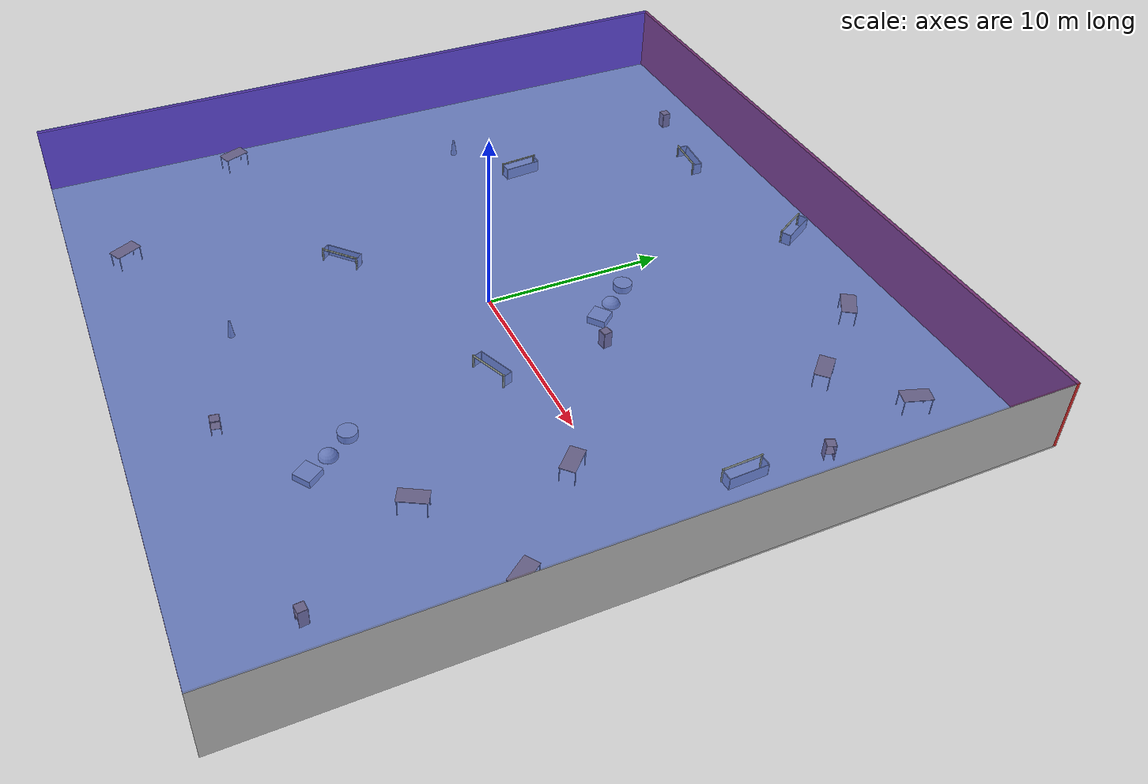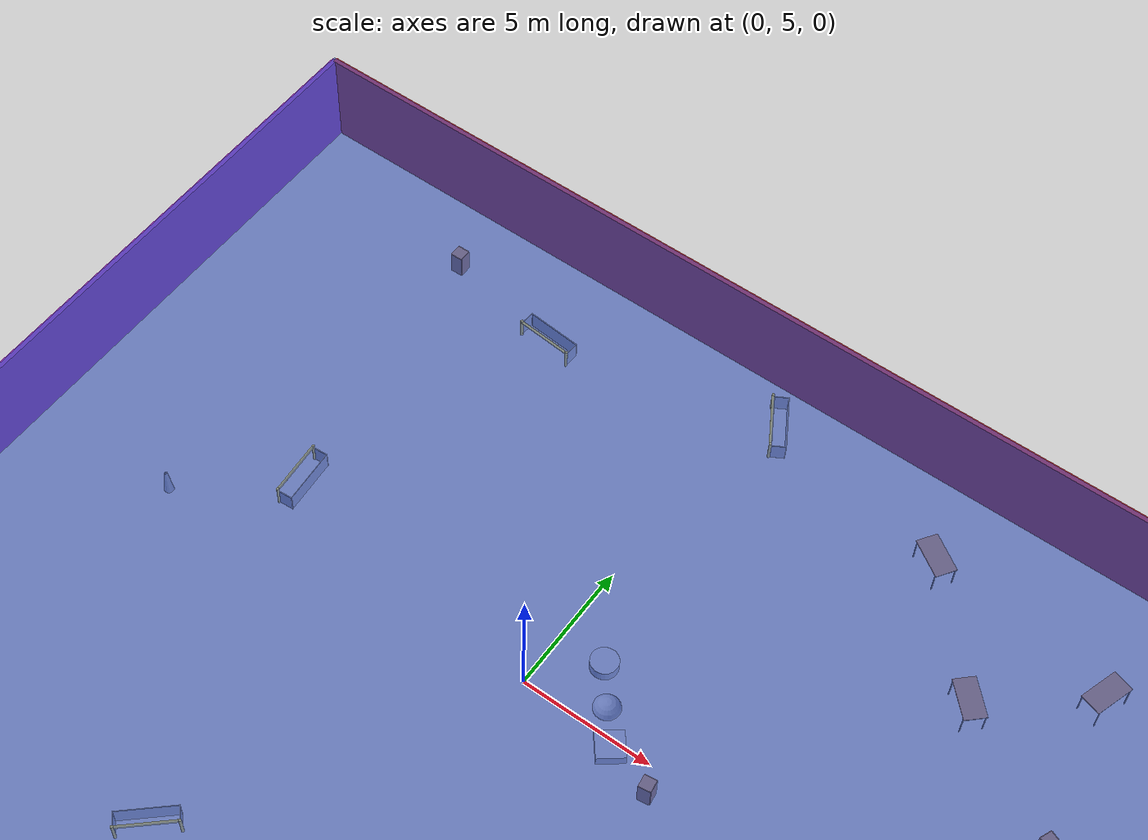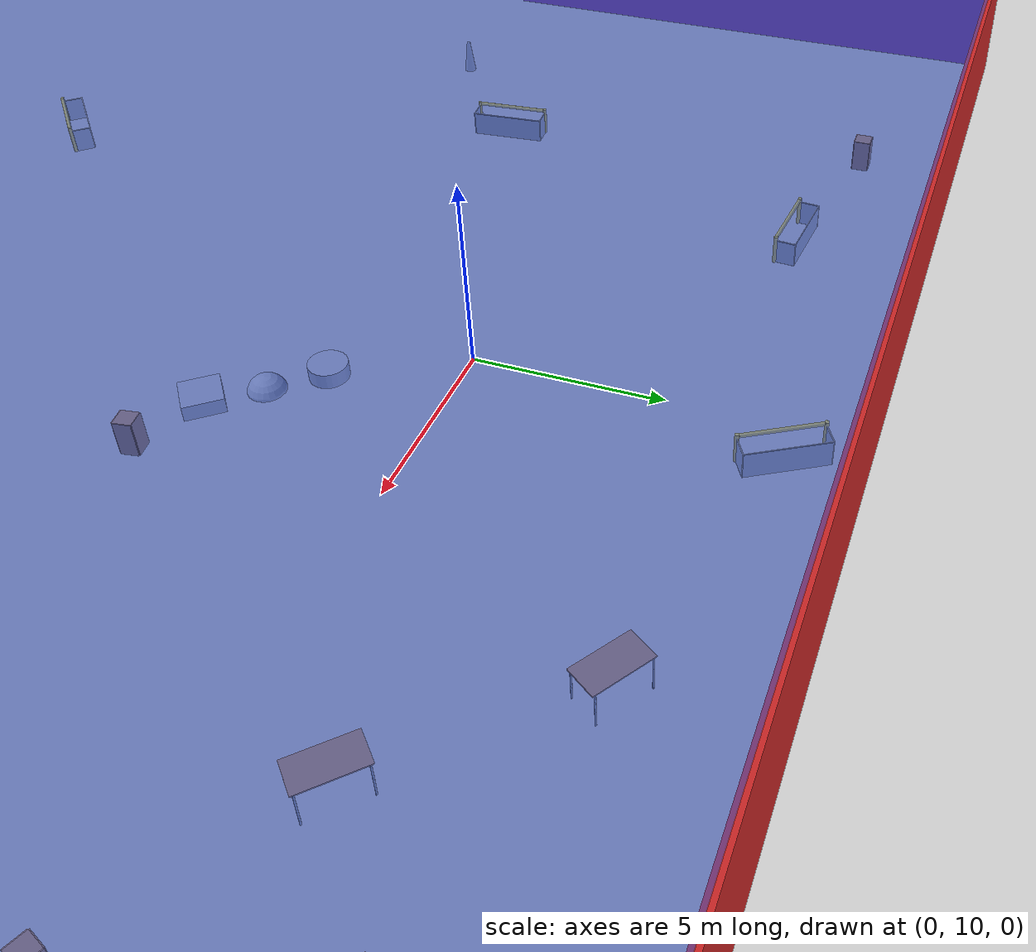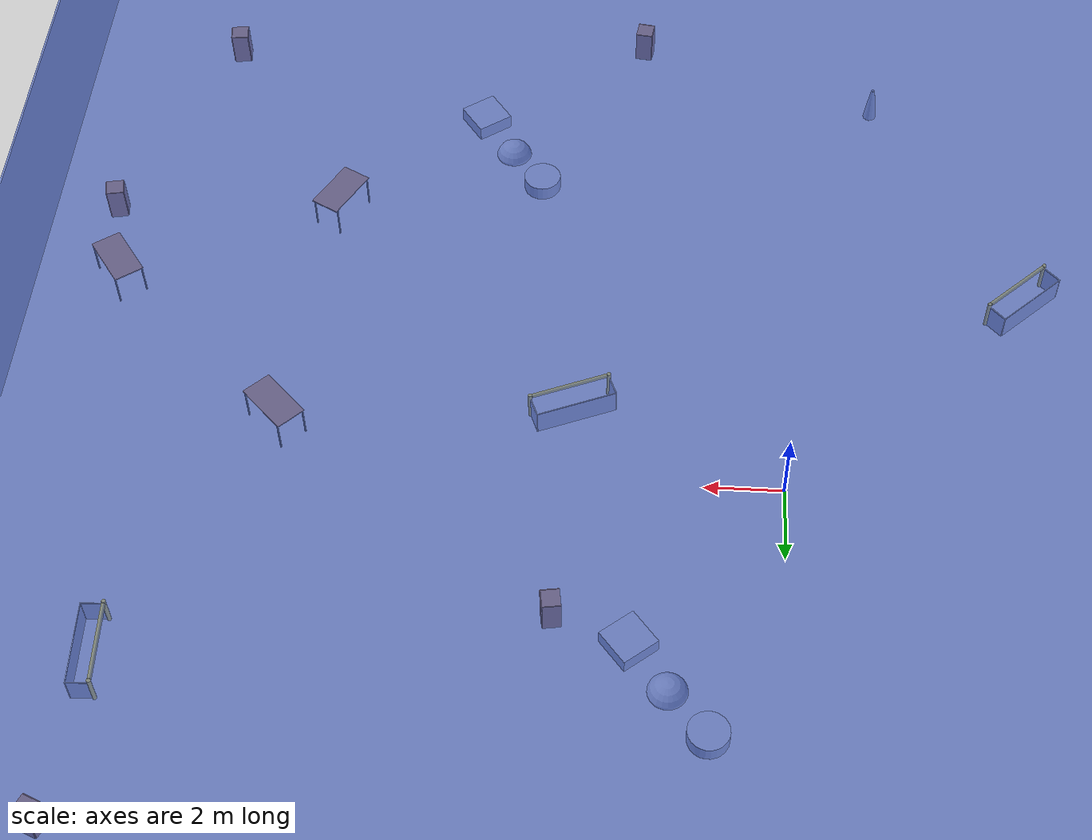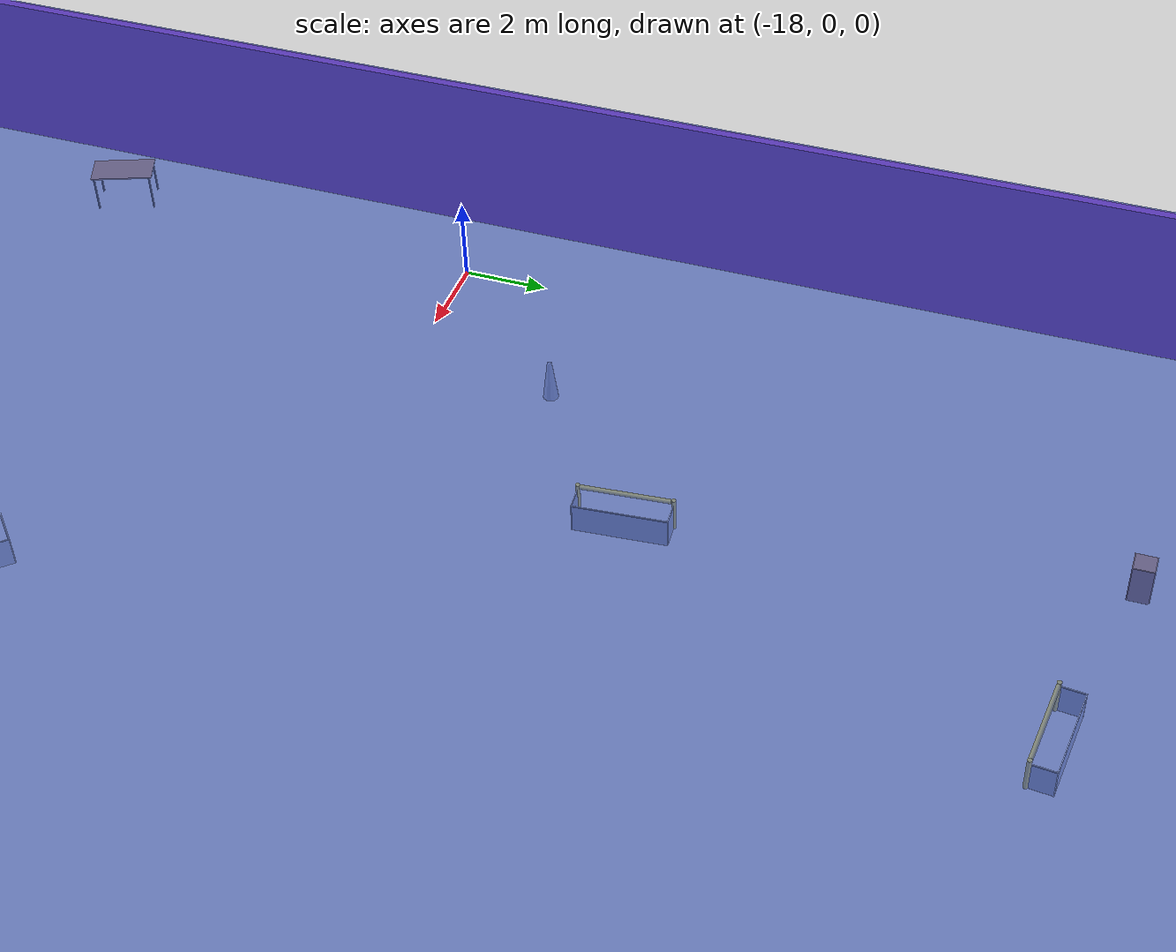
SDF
<sdf version="1.4">
 <world name="default">
  <physics type="ode">
   <max_step_size>0.001</max_step_size>
   <real_time_factor>1</real_time_factor>
   <real_time_update_rate>1000</real_time_update_rate>
   <gravity>0 0 -9.8</gravity>
  </physics>
  <scene><ambient>0.4 0.4 0.4 1</ambient><background>0.7 0.7 0.7 1</background><shadows>1</shadows></scene>
  <model name="Surrounding">
   <static>1</static>
   <link name="Ceiling">
    <collision name="Ceiling_Collision"><geometry><box><size>40 40 0.1</size></box></geometry></collision>
    <visual name="Ceiling_Visual">
     <geometry><box><size>40 40 0.1</size></box></geometry>
     <material>
      <script><uri>file://media/materials/scripts/gazebo.material</uri><name>Gazebo/BlueTransparent</name></script>
     </material>
    </visual>
    <pose>0 0 4.05 0 0 0</pose>
   </link>
   <link name="Wall_South">
    <collision name="Wall_South_Collision">
     <geometry><box><size>40 0 4</size></box></geometry>
     <pose>0 0 2 0 -0 0</pose>
    </collision>
    <visual name="Wall_South_Visual">
     <pose>0 0 2 0 -0 0</pose>
     <geometry><box><size>40 0 4</size></box></geometry>
     <material>
      <script><uri>file://media/materials/scripts/gazebo.material</uri><name>Gazebo/RedGlow</name></script>
     </material>
    </visual>
    <velocity_decay><linear>0</linear><angular>0</angular></velocity_decay>
    <pose>0 -20 0 0 -0 0</pose>
   </link>
   <link name="Wall_East">
    <collision name="Wall_21_Collision">
     <geometry><box><size>40 0 4</size></box></geometry>
     <pose>0 0 2 0 -0 0</pose>
    </collision>
    <visual name="Wall_21_Visual">
     <pose>0 0 2 0 -0 0</pose>
     <geometry><box><size>40 0 4</size></box></geometry>
     <material>
      <script><uri>file://media/materials/scripts/gazebo.material</uri><name>Gazebo/JointAnchor</name></script>
     </material>
    </visual>
    <velocity_decay><linear>0</linear><angular>0</angular></velocity_decay>
    <pose>20 0 0 0 -0 1.5708</pose>
   </link>
   <link name="Wall_North">
    <collision name="Wall_22_Collision">
     <geometry><box><size>40 0.2 4</size></box></geometry>
     <pose>0 0 2 0 -0 0</pose>
    </collision>
    <visual name="Wall_22_Visual">
     <pose>0 0 2 0 -0 0</pose>
     <geometry><box><size>40 0.2 4</size></box></geometry>
     <material>
      <script><uri>file://media/materials/scripts/gazebo.material</uri><name>Gazebo/RedGlow</name></script>
     </material>
    </visual>
    <velocity_decay><linear>0</linear><angular>0</angular></velocity_decay>
    <pose>0 20 0 0 -0 0</pose>
   </link>
   <link name="Wall_West">
    <collision name="Wall_23_Collision">
     <geometry><box><size>40 0.2 4</size></box></geometry>
     <pose>0 0 2 0 -0 0</pose>
    </collision>
    <visual name="Wall_23_Visual">
     <pose>0 0 2 0 -0 0</pose>
     <geometry><box><size>40 0.2 4</size></box></geometry>
     <material>
      <script><uri>file://media/materials/scripts/gazebo.material</uri><name>Gazebo/PurpleGlow</name></script>
     </material>
    </visual>
    <velocity_decay><linear>0</linear><angular>0</angular></velocity_decay>
    <pose>-20 0 0 0 0 -1.5708</pose>
   </link>
   <link name="Ground_link">
    <collision name="collision">
     <pose>0 0 .05 0 -0 0</pose>
     <geometry><box><size>40 40 0.1</size></box></geometry>
    </collision>
    <visual name="visual">
     <pose>0 0 .05 0 -0 0</pose>
     <geometry><box><size>40 40 0.1</size></box></geometry>
     <material>
      <script><uri>file://media/materials/scripts/gazebo.material</uri><name>Gazebo/LightOn</name></script>
     </material>
    </visual>
   </link>
   <static>1</static>
  </model>
  <spherical_coordinates>
   <surface_model>EARTH_WGS84</surface_model>
   <latitude_deg>0</latitude_deg>
   <longitude_deg>0</longitude_deg>
   <elevation>0</elevation>
   <heading_deg>0</heading_deg>
  </spherical_coordinates>
  <light name="lightball_0" type="diffuse">
   <diffuse>0.8 0.8 0.8 1</diffuse>
   <specular>0.2 0.2 0.2 1</specular>
   <attenuation>
    <range>100</range>
    <constant>0.7</constant>
    <linear>0.01</linear>
    <quadratic>0.001</quadratic>
   </attenuation>
   <direction>-0.5 0.1 -0.9</direction>
   <pose>1.09448018901 8.56113026568 2.97247253744 0 0 0</pose>
  </light>
  <light name="lightball_1" type="diffuse">
   <diffuse>0.8 0.8 0.8 1</diffuse>
   <specular>0.2 0.2 0.2 1</specular>
   <attenuation>
    <range>100</range>
    <constant>0.7</constant>
    <linear>0.01</linear>
    <quadratic>0.001</quadratic>
   </attenuation>
   <direction>-0.5 0.1 -0.9</direction>
   <pose>17.7368907683 -2.19167987416 3.68672650217 0 0 0</pose>
  </light>
  <light name="lightball_2" type="diffuse">
   <diffuse>0.8 0.8 0.8 1</diffuse>
   <specular>0.2 0.2 0.2 1</specular>
   <attenuation>
    <range>100</range>
    <constant>0.7</constant>
    <linear>0.01</linear>
    <quadratic>0.001</quadratic>
   </attenuation>
   <direction>-0.5 0.1 -0.9</direction>
   <pose>3.62153551085 13.1170481427 3.23565134945 0 0 0</pose>
  </light>
  <light name="lightball_3" type="diffuse">
   <diffuse>0.8 0.8 0.8 1</diffuse>
   <specular>0.2 0.2 0.2 1</specular>
   <attenuation>
    <range>100</range>
    <constant>0.7</constant>
    <linear>0.01</linear>
    <quadratic>0.001</quadratic>
   </attenuation>
   <direction>-0.5 0.1 -0.9</direction>
   <pose>-6.06603078817 15.5785427245 1.19107029174 0 0 0</pose>
  </light>
  <light name="lightball_4" type="diffuse">
   <diffuse>0.8 0.8 0.8 1</diffuse>
   <specular>0.2 0.2 0.2 1</specular>
   <attenuation>
    <range>100</range>
    <constant>0.7</constant>
    <linear>0.01</linear>
    <quadratic>0.001</quadratic>
   </attenuation>
   <direction>-0.5 0.1 -0.9</direction>
   <pose>-10.7807151904 5.03403409186 3.68273151197 0 0 0</pose>
  </light>
  <include><uri>model://table</uri><pose>-18.0650453213 -9.27261062349 0 0 0 1.93829911586</pose></include>
  <include>
   <uri>model://construction_cone</uri>
   <pose>-14.2005848166 3.59962054039 0 0 0 1.45111251353</pose>
  </include>
  <include><uri>model://table</uri><pose>-10.8419162661 -17.08135889 0 0 0 2.05458241144</pose></include>
  <include>
   <uri>model://robocup_3Dsim_goal</uri>
   <pose>-10.9090574067 6.5383921301 0 0 0 0.0823179825947</pose>
  </include>
  <include><uri>model://cabinet</uri><pose>-12.1009812258 17.3402854105 0 0 0 0.0142328134106</pose></include>
  <include>
   <uri>model://robocup_3Dsim_goal</uri>
   <pose>-7.41798078859 16.1722848073 0 0 0 1.48628759224</pose>
  </include>
  <include>
   <uri>model://robocup_3Dsim_goal</uri>
   <pose>-6.10554269249 -6.34478915456 0 0 0 2.31936987643</pose>
  </include>
  <include>
   <uri>model://construction_cone</uri>
   <pose>-2.57256032122 -13.3001518832 0 0 0 1.50013992887</pose>
  </include>
  <include>
   <uri>model://robocup_3Dsim_goal</uri>
   <pose>1.05527177858 18.0606513324 0 0 0 0.52451924803</pose>
  </include>
  <include><uri>model://cabinet</uri><pose>3.96330973468 -15.5883534513 0 0 0 2.99463560594</pose></include>
  <include>
   <uri>model://textured_shapes</uri>
   <pose>2.74226688035 5.81978095745 0 0 0 0.678020738149</pose>
  </include>
  <include>
   <uri>model://textured_shapes</uri>
   <pose>7.50709355383 -11.2265260116 0 0 0 0.623110011219</pose>
  </include>
  <include>
   <uri>model://robocup_3Dsim_goal</uri>
   <pose>5.44781014945 -2.37235171334 0 0 0 1.95696784035</pose>
  </include>
  <include><uri>model://cabinet</uri><pose>5.52417143545 4.02640531576 0 0 0 0.146424324807</pose></include>
  <include><uri>model://table</uri><pose>8.48729790374 16.6364154529 0 0 0 2.55761394029</pose></include>
  <include><uri>model://table</uri><pose>12.0501182579 -8.71887035359 0 0 0 1.07063707284</pose></include>
  <include><uri>model://table</uri><pose>12.8002789722 -1.37360468304 0 0 0 2.34747144937</pose></include>
  <include><uri>model://table</uri><pose>12.0567506184 12.6599768773 0 0 0 2.34781132407</pose></include>
  <include><uri>model://cabinet</uri><pose>15.8020380307 -14.8692471485 0 0 0 1.66804431663</pose></include>
  <include>
   <uri>model://robocup_3Dsim_goal</uri>
   <pose>15.8430617458 5.64266506662 0 0 0 0.0407698597229</pose>
  </include>
  <include><uri>model://cabinet</uri><pose>16.4855610209 9.88656334687 0 0 0 2.74622323924</pose></include>
  <include><uri>model://table</uri><pose>15.4578915159 15.4658815788 0 0 0 1.26687329844</pose></include>
  <include><uri>model://cabinet</uri><pose>18.2151708523 -8.46727506575 0 0 0 1.74646436</pose></include>
  <include><uri>model://table</uri><pose>17.652403354 -5.971250014 0 0 0 2.19035047493</pose></include>
 </world>
</sdf>

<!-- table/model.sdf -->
<sdf version="1.5">
  <model name="table">
    <static>true</static>
    <link name="link">
      <collision name="surface">
        <pose>0 0 1.0 0 0 0</pose>
        <geometry>
          <box>
            <size>1.5 0.8 0.03</size>
          </box>
        </geometry>
        <surface>
          <friction>
            <ode>
              <mu>0.6</mu>
              <mu2>0.6</mu2>
            </ode>
          </friction>
        </surface>
      </collision>
      <visual name="visual1">
        <pose>0 0 1.0 0 0 0</pose>
        <geometry>
          <box>
            <size>1.5 0.8 0.03</size>
          </box>
        </geometry>
        <material>
          <script>
            <uri>model://media/materials/scripts/gazebo.material</uri>
            <name>Gazebo/Wood</name>
          </script>
        </material>
      </visual>
      <collision name="front_left_leg">
        <pose>0.68 0.38 0.5 0 0 0</pose>
        <geometry>
          <cylinder>
            <radius>0.02</radius>
            <length>1.0</length>
          </cylinder>
        </geometry>
      </collision>
      <visual name="front_left_leg">
        <pose>0.68 0.38 0.5 0 0 0</pose>
        <geometry>
          <cylinder>
            <radius>0.02</radius>
            <length>1.0</length>
          </cylinder>
        </geometry>
        <material>
          <script>
            <uri>model://media/materials/scripts/gazebo.material</uri>
            <name>Gazebo/Grey</name>
          </script>
        </material>
      </visual>
      <collision name="front_right_leg">
        <pose>0.68 -0.38 0.5 0 0 0</pose>
        <geometry>
          <cylinder>
            <radius>0.02</radius>
            <length>1.0</length>
          </cylinder>
        </geometry>
      </collision>
      <visual name="front_right_leg">
        <pose>0.68 -0.38 0.5 0 0 0</pose>
        <geometry>
          <cylinder>
            <radius>0.02</radius>
            <length>1.0</length>
          </cylinder>
        </geometry>
        <material>
          <script>
            <uri>model://media/materials/scripts/gazebo.material</uri>
            <name>Gazebo/Grey</name>
          </script>
        </material>
      </visual>
      <collision name="back_right_leg">
        <pose>-0.68 -0.38 0.5 0 0 0</pose>
        <geometry>
          <cylinder>
            <radius>0.02</radius>
            <length>1.0</length>
          </cylinder>
        </geometry>
      </collision>
      <visual name="back_right_leg">
        <pose>-0.68 -0.38 0.5 0 0 0</pose>
        <geometry>
          <cylinder>
            <radius>0.02</radius>
            <length>1.0</length>
          </cylinder>
        </geometry>
        <material>
          <script>
            <uri>model://media/materials/scripts/gazebo.material</uri>
            <name>Gazebo/Grey</name>
          </script>
        </material>
      </visual>
      <collision name="back_left_leg">
        <pose>-0.68 0.38 0.5 0 0 0</pose>
        <geometry>
          <cylinder>
            <radius>0.02</radius>
            <length>1.0</length>
          </cylinder>
        </geometry>
      </collision>
      <visual name="back_left_leg">
        <pose>-0.68 0.38 0.5 0 0 0</pose>
        <geometry>
          <cylinder>
            <radius>0.02</radius>
            <length>1.0</length>
          </cylinder>
        </geometry>
        <material>
          <script>
            <uri>model://media/materials/scripts/gazebo.material</uri>
            <name>Gazebo/Grey</name>
          </script>
        </material>
      </visual>
    </link>
  </model>
</sdf>

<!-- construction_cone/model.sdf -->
<sdf version="1.5">
  <model name="Construction Cone">
    <link name="link">
      <collision name="collision">
        <geometry>
          <mesh>
            <scale>10 10 10</scale>
            <uri>file://isr-testbed/construction_cone/meshes/construction_cone.dae</uri>
          </mesh>
        </geometry>
      </collision>
      <visual name="visual">
        <geometry>
          <mesh>
            <scale>10 10 10</scale>
            <uri>file://isr-testbed/construction_cone/meshes/construction_cone.dae</uri>
          </mesh>
        </geometry>
      </visual>
    </link>
  </model>
</sdf>

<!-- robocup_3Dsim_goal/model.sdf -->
<sdf version="1.5">
  <model name="robocup_3d_goal">
    <static>true</static>
    <link name="left_post">
      <pose>0 1.05 0.45 0 0 0</pose>
      <collision name="collision">
        <geometry>
          <cylinder>
            <radius>0.05</radius>
            <length>0.9</length>
          </cylinder>
        </geometry>
      </collision>
      <visual name="visual">
        <geometry>
          <cylinder>
            <radius>0.05</radius>
            <length>0.9</length>
          </cylinder>
        </geometry>
        <material>
          <script>
            <uri>file://media/materials/scripts/gazebo.material</uri>
            <name>Gazebo/ZincYellow</name>
          </script>
        </material>
      </visual>
    </link>
    <link name="left_support_horiz_lower">
      <pose>0.30 1.05 0.01 0 0 0</pose>
      <collision name="collision">
        <geometry>
          <box>
            <size>0.50 0.02 0.02</size>
          </box>
        </geometry>
      </collision>
      <visual name="visual">
        <geometry>
          <box>
            <size>0.50 0.02 0.02</size>
          </box>
        </geometry>
        <material>
          <script>
            <uri>file://media/materials/scripts/gazebo.material</uri>
            <name>Gazebo/White</name>
          </script>
        </material>
      </visual>
    </link>
    <link name="left_support_horiz_upper">
      <pose>0.30 1.05 0.79 0 0 0</pose>
      <collision name="collision">
        <geometry>
          <box>
            <size>0.50 0.02 0.02</size>
          </box>
        </geometry>
      </collision>
      <visual name="visual">
        <geometry>
          <box>
            <size>0.50 0.02 0.02</size>
          </box>
        </geometry>
        <material>
          <script>
            <uri>file://media/materials/scripts/gazebo.material</uri>
            <name>Gazebo/White</name>
          </script>
        </material>
      </visual>
    </link>
    <link name="left_support_vertical">
      <pose>0.56 1.05 0.4 0 1.5708 0</pose>
      <collision name="collision">
        <geometry>
          <box>
            <size>0.80 0.02 0.02</size>
          </box>
        </geometry>
      </collision>
      <visual name="visual">
        <geometry>
          <box>
            <size>0.80 0.02 0.02</size>
          </box>
        </geometry>
        <material>
          <script>
            <uri>file://media/materials/scripts/gazebo.material</uri>
            <name>Gazebo/White</name>
          </script>
        </material>
      </visual>
    </link>
    <link name="right_support_horiz_lower">
      <pose>0.30 -1.05 0.01 0 0 0</pose>
      <collision name="collision">
        <geometry>
          <box>
            <size>0.50 0.02 0.02</size>
          </box>
        </geometry>
      </collision>
      <visual name="visual">
        <geometry>
          <box>
            <size>0.50 0.02 0.02</size>
          </box>
        </geometry>
        <material>
          <script>
            <uri>file://media/materials/scripts/gazebo.material</uri>
            <name>Gazebo/White</name>
          </script>
        </material>
      </visual>
    </link>
    <link name="right_support_horiz_upper">
      <pose>0.30 -1.05 0.79 0 0 0</pose>
      <collision name="collision">
        <geometry>
          <box>
            <size>0.50 0.02 0.02</size>
          </box>
        </geometry>
      </collision>
      <visual name="visual">
        <geometry>
          <box>
            <size>0.50 0.02 0.02</size>
          </box>
        </geometry>
        <material>
          <script>
            <uri>file://media/materials/scripts/gazebo.material</uri>
            <name>Gazebo/White</name>
          </script>
        </material>
      </visual>
    </link>
    <link name="right_support_vertical">
      <pose>0.56 -1.05 0.4 0 1.5708 0</pose>
      <collision name="collision">
        <geometry>
          <box>
            <size>0.80 0.02 0.02</size>
          </box>
        </geometry>
      </collision>
      <visual name="visual">
        <geometry>
          <box>
            <size>0.80 0.02 0.02</size>
          </box>
        </geometry>
        <material>
          <script>
            <uri>file://media/materials/scripts/gazebo.material</uri>
            <name>Gazebo/White</name>
          </script>
        </material>
      </visual>
    </link>
    <link name="center_support_horiz_lower">
      <pose>0.56 0 0.01 0 1.5708 0</pose>
      <collision name="collision">
        <geometry>
          <box>
            <size>0.02 2.08 0.02</size>
          </box>
        </geometry>
      </collision>
      <visual name="visual">
        <geometry>
          <box>
            <size>0.02 2.08 0.02</size>
          </box>
        </geometry>
        <material>
          <script>
            <uri>file://media/materials/scripts/gazebo.material</uri>
            <name>Gazebo/White</name>
          </script>
        </material>
      </visual>
    </link>
    <link name="center_support_horiz_upper">
      <pose>0.56 0 0.79 0 1.5708 0</pose>
      <collision name="collision">
        <geometry>
          <box>
            <size>0.02 2.08 0.02</size>
          </box>
        </geometry>
      </collision>
      <visual name="visual">
        <geometry>
          <box>
            <size>0.02 2.08 0.02</size>
          </box>
        </geometry>
        <material>
          <script>
            <uri>file://media/materials/scripts/gazebo.material</uri>
            <name>Gazebo/White</name>
          </script>
        </material>
      </visual>
    </link>
    <link name="right_post">
      <pose>0 -1.05 0.45 0 0 0</pose>
      <collision name="collision">
        <geometry>
          <cylinder>
            <radius>0.05</radius>
            <length>0.9</length>
          </cylinder>
        </geometry>
      </collision>
      <visual name="visual">
        <geometry>
          <cylinder>
            <radius>0.05</radius>
            <length>0.9</length>
          </cylinder>
        </geometry>
        <material>
          <script>
            <uri>file://media/materials/scripts/gazebo.material</uri>
            <name>Gazebo/ZincYellow</name>
          </script>
        </material>
      </visual>
    </link>
    <link name="crossbar">
      <pose>0 0 0.85 1.57 1.57 0</pose>
      <collision name="collision">
        <geometry>
          <cylinder>
            <radius>0.05</radius>
            <length>2.0</length>
          </cylinder>
        </geometry>
      </collision>
      <visual name="visual">
        <geometry>
          <cylinder>
            <radius>0.05</radius>
            <length>2.0</length>
          </cylinder>
        </geometry>
        <material>
          <script>
            <uri>file://media/materials/scripts/gazebo.material</uri>
            <name>Gazebo/ZincYellow</name>
          </script>
        </material>
      </visual>
    </link>
    <link name="center_net">
      <pose>0.56 0 0.40 0 0 0</pose>
      <collision name="collision">
        <geometry>
          <box>
            <size>0.01 2.1 0.80</size>
          </box>
        </geometry>
      </collision>
      <visual name="visual">
        <geometry>
          <box>
            <size>0.01 2.1 0.80</size>
          </box>
        </geometry>
        <material>
          <script>
            <uri>model://../model_source/models/robocup09_spl_field/materials/scripts/</uri>
            <uri>model://../model_source/models/robocup09_spl_field/materials/textures/</uri>
            <name>RoboCup/Net</name>
          </script>
        </material>
      </visual>
    </link>
    <link name="left_net">
      <pose>0.30 1.05 0.40 0 0 0</pose>
      <collision name="collision">
        <geometry>
          <box>
            <size>0.50 0.01 0.76</size>
          </box>
        </geometry>
      </collision>
      <visual name="visual">
        <geometry>
          <box>
            <size>0.50 0.01 0.76</size>
          </box>
        </geometry>
        <material>
          <script>
            <uri>model://../model_source/models/robocup09_spl_field/materials/scripts/</uri>
            <uri>model://../model_source/models/robocup09_spl_field/materials/textures/</uri>
            <name>RoboCup/Net</name>
          </script>
        </material>
      </visual>
    </link>
    <link name="right_net">
      <pose>0.30 -1.05 0.40 0 0 0</pose>
      <collision name="collision">
        <geometry>
          <box>
            <size>0.50 0.01 0.76</size>
          </box>
        </geometry>
      </collision>
      <visual name="visual">
        <geometry>
          <box>
            <size>0.50 0.01 0.76</size>
          </box>
        </geometry>
        <material>
          <script>
            <uri>model://../model_source/models/robocup09_spl_field/materials/scripts/</uri>
            <uri>model://../model_source/models/robocup09_spl_field/materials/textures/</uri>
            <name>RoboCup/Net</name>
          </script>
        </material>
      </visual>
    </link>
  </model>
</sdf>

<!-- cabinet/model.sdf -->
<sdf version="1.5">
  <model name="cabinet">
    <static>true</static>
    <link name="cabinet_bottom_plate">
      <inertial>
        <pose>0 0 -1 0 0 0</pose>
        <inertia>
          <ixx>2.050000</ixx>
          <ixy>0</ixy>
          <ixz>0</ixz>
          <iyy>2.050000</iyy>
          <iyz>0</iyz>
          <izz>2.050000</izz>
        </inertia>
        <mass>25.000000</mass>
      </inertial>
      <collision name="cabinet_bottom_plate_geom">
        <pose>0 0 0.010000 0 0 0</pose>
        <geometry>
          <box>
            <size>0.450000 0.450000 0.020000</size>
          </box>
        </geometry>
      </collision>
      <visual name="cabinet_bottom_plate_geom_visual">
        <pose>0 0 0.010000 0 0 0</pose>
        <geometry>
          <box>
            <size>0.450000 0.450000 0.020000</size>
          </box>
        </geometry>
        <material>
          <script>
            <uri>model://media/materials/scripts/gazebo.material</uri>
            <name>Gazebo/Wood</name>
          </script>
        </material>
      </visual>
      <collision name="cabinet_bottom_plate_geom_cabinet_back_plate">
        <pose>0.235000 0 0.510000 0 0 0</pose>
        <geometry>
          <box>
            <size>0.020000 0.450000 1.020000</size>
          </box>
        </geometry>
      </collision>
      <visual name="cabinet_bottom_plate_geom_cabinet_back_plate_visual">
        <pose>0.235000 0 0.510000 0 0 0</pose>
        <geometry>
          <box>
            <size>0.020000 0.450000 1.020000</size>
          </box>
        </geometry>
        <material>
          <script>
            <uri>model://media/materials/scripts/gazebo.material</uri>
            <name>Gazebo/Wood</name>
          </script>
        </material>
      </visual>
      <collision name="cabinet_bottom_plate_geom_cabinet_left_plate">
        <pose>0 0.235000 0.510000 0 0 0</pose>
        <geometry>
          <box>
            <size>0.450000 0.020000 1.020000</size>
          </box>
        </geometry>
      </collision>
      <visual name="cabinet_bottom_plate_geom_cabinet_left_plate_visual">
        <pose>0 0.235000 0.510000 0 0 0</pose>
        <geometry>
          <box>
            <size>0.450000 0.020000 1.020000</size>
          </box>
        </geometry>
        <material>
          <script>
            <uri>model://media/materials/scripts/gazebo.material</uri>
            <name>Gazebo/Wood</name>
          </script>
        </material>
      </visual>
      <collision name="cabinet_bottom_plate_geom_cabinet_middle_plate">
        <pose>0 0 0.510000 0 0 0</pose>
        <geometry>
          <box>
            <size>0.450000 0.450000 0.020000</size>
          </box>
        </geometry>
      </collision>
      <visual name="cabinet_bottom_plate_geom_cabinet_middle_plate_visual">
        <pose>0 0 0.510000 0 0 0</pose>
        <geometry>
          <box>
            <size>0.450000 0.450000 0.020000</size>
          </box>
        </geometry>
        <material>
          <script>
            <uri>model://media/materials/scripts/gazebo.material</uri>
            <name>Gazebo/Wood</name>
          </script>
        </material>
      </visual>
      <collision name="cabinet_bottom_plate_geom_cabinet_right_plate">
        <pose>0 -0.235000 0.510000 0 0 0</pose>
        <geometry>
          <box>
            <size>0.450000 0.020000 1.020000</size>
          </box>
        </geometry>
      </collision>
      <visual name="cabinet_bottom_plate_geom_cabinet_right_plate_visual">
        <pose>0 -0.235000 0.510000 0 0 0</pose>
        <geometry>
          <box>
            <size>0.450000 0.020000 1.020000</size>
          </box>
        </geometry>
        <material>
          <script>
            <uri>model://media/materials/scripts/gazebo.material</uri>
            <name>Gazebo/Wood</name>
          </script>
        </material>
      </visual>
      <collision name="cabinet_bottom_plate_geom_cabinet_top_plate">
        <pose>0 0 1.010000 0 0 0</pose>
        <geometry>
          <box>
            <size>0.450000 0.450000 0.020000</size>
          </box>
        </geometry>
      </collision>
      <visual name="cabinet_bottom_plate_geom_cabinet_top_plate_visual">
        <pose>0 0 1.010000 0 0 0</pose>
        <geometry>
          <box>
            <size>0.450000 0.450000 0.020000</size>
          </box>
        </geometry>
        <material>
          <script>
            <uri>model://media/materials/scripts/gazebo.material</uri>
            <name>Gazebo/Wood</name>
          </script>
        </material>
      </visual>
    </link>
  </model>
</sdf>

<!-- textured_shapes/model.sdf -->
<sdf version="1.6">
  <model name="textured_shapes">
    <pose>0 0 0.5 0 0 0</pose>
    <link name="box">
      <pose>0 -1.5 0 0 0 0</pose>
      <collision name="collision">
        <geometry>
          <box>
            <size>1 1 1</size>
          </box>
        </geometry>
      </collision>
      <visual name="visual">
        <geometry>
          <box>
            <size>1 1 1</size>
          </box>
        </geometry>
        <material>
          <script>
            <uri>model://../model_source/models/textured_shapes/materials/scripts</uri>
            <uri>model://../model_source/models/textured_shapes/materials/textures</uri>
            <name>TexturedShape/Squares</name>
          </script>
        </material>
      </visual>
    </link>
    <link name="sphere">
      <collision name="collision">
        <geometry>
          <sphere>
            <radius>0.5</radius>
          </sphere>
        </geometry>
      </collision>
      <visual name="visual">
        <geometry>
          <sphere>
            <radius>0.5</radius>
          </sphere>
        </geometry>
        <material>
          <script>
            <uri>model://../model_source/models/textured_shapes/materials/scripts</uri>
            <uri>model://../model_source/models/textured_shapes/materials/textures</uri>
            <name>TexturedShape/Squares</name>
          </script>
        </material>
      </visual>
    </link>
    <link name="cylinder">
      <pose>0 1.5 0 0 0 0</pose>
      <collision name="collision">
        <geometry>
          <cylinder>
            <radius>0.5</radius>
            <length>1</length>
          </cylinder>
        </geometry>
      </collision>
      <visual name="visual">
        <geometry>
          <cylinder>
            <radius>0.5</radius>
            <length>1</length>
          </cylinder>
        </geometry>
        <material>
          <script>
            <uri>model://../model_source/models/textured_shapes/materials/scripts</uri>
            <uri>model://../model_source/models/textured_shapes/materials/textures</uri>
            <name>TexturedShape/Squares</name>
          </script>
        </material>
      </visual>
    </link>
  </model>
</sdf>
